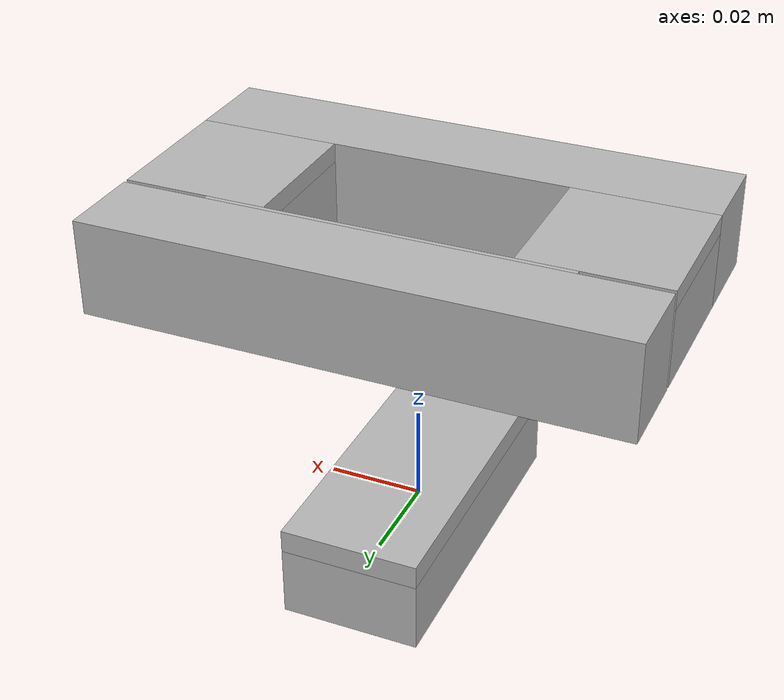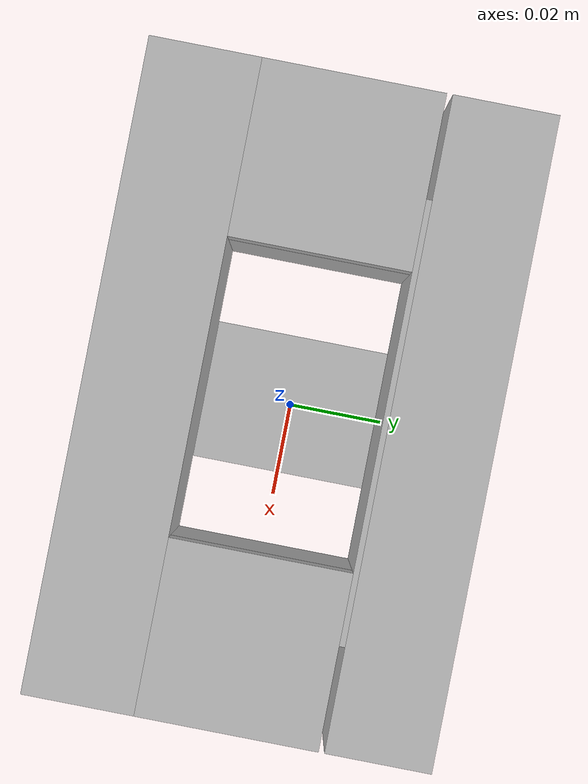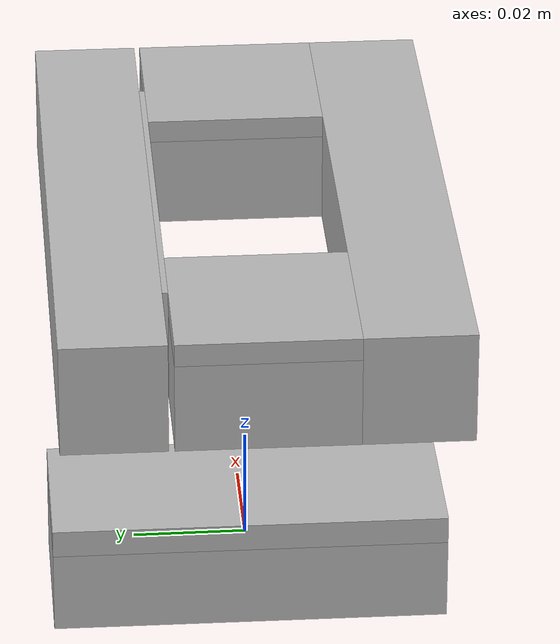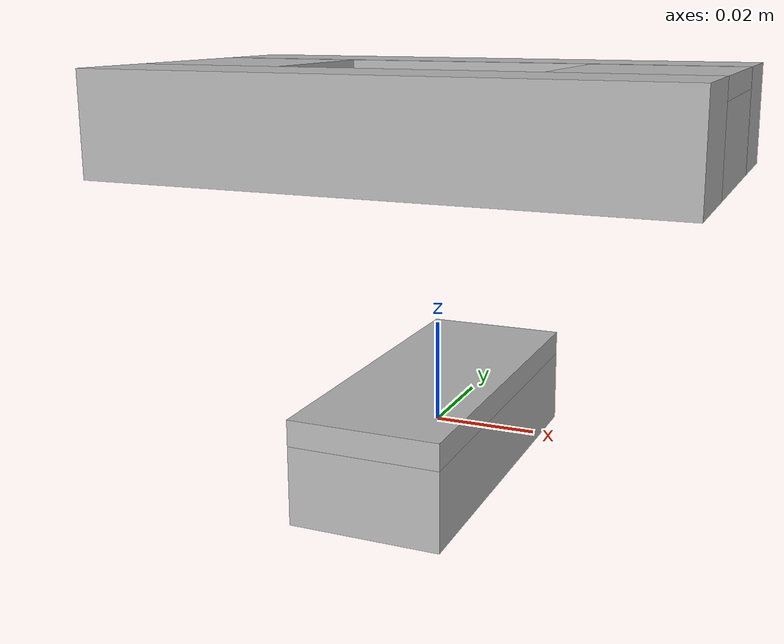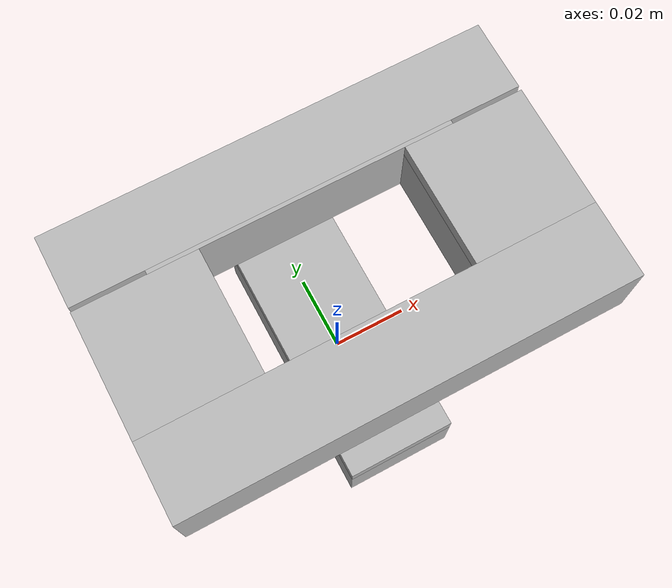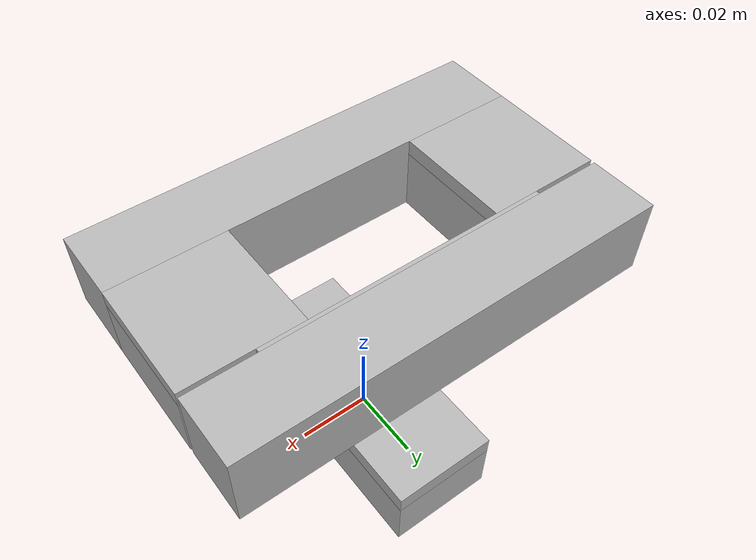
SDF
<?xml version="1.0"?>
<sdf version="1.7">
<world name="w">
<model name="big_fixed_puzzle">
<link name="bin_base">
	<inertial>
		<mass>1.0</mass>
		<inertia>
			<ixx>1.0</ixx><ixy>0.0</ixy><ixz>0</ixz>
			<iyy>1.0</iyy><iyz>0.0</iyz><izz>1.0</izz>
		</inertia>
	</inertial>
	<visual name="b1">
		<pose>0.0 0.0 -0.0025 0.0 0.0 0.0</pose>
		<geometry>
			<box><size>0.028999999999999998 0.07 0.015</size></box>
		</geometry>
	</visual>
	<collision name="b1">
		<pose>0.0 0.0 -0.0025 0.0 0.0 0.0</pose>
		<geometry>
			<box><size>0.028999999999999998 0.07 0.015</size></box>
		</geometry>
        </collision>
        <visual name="b1_top">
		<pose>0.0 0.0 0.0075 0.0 0.0 0.0</pose>
		<geometry>
			<box><size>0.028999999999999998 0.07 0.005</size></box>
		</geometry>
	</visual>
	<collision name="b1_top">
		<pose>0.0 0.0 0.0075 0.0 0.0 0.0</pose>
		<geometry>
			<box><size>0.028999999999999998 0.07 0.005</size></box>
		</geometry>
	</collision>

	<visual name="b2">
		<pose>0.0 0.0255 0.06 0.0 0.0 0.0</pose>
		<geometry>
			<box><size>0.1105 0.018 0.02</size></box>
		</geometry>
	</visual>
	<collision name="b2">
		<pose>0.0 0.0255 0.06 0.0 0.0 0.0</pose>
		<geometry>
			<box><size>0.1105 0.018 0.02</size></box>
		</geometry>
        </collision>
        <visual name="b2_inside">
		<pose>0.0 0.016 0.06 0.0 0.0 0.0</pose>
		<geometry>
			<box><size>0.075 0.001 0.02</size></box>
		</geometry>
	</visual>
	<collision name="b2_inside">
		<pose>0.0 0.016 0.06 0.0 0.0 0.0</pose>
		<geometry>
			<box><size>0.075 0.001 0.02</size></box>
		</geometry>
	</collision>

	<visual name="b3_top">
		<pose>0.04025 0.0 0.068 0.0 0.0 0.0</pose>
		<geometry>
			<box><size>0.03 0.031 0.004</size></box>
		</geometry>
	</visual>
	<collision name="b3_top">
		<pose>0.04025 0.0 0.068 0.0 0.0 0.0</pose>
		<geometry>
			<box><size>0.03 0.031 0.004</size></box>
		</geometry>
        </collision>
        <visual name="b3_bottom">
		<pose>0.04025 0.0 0.058 0.0 0.0 0.0</pose>
		<geometry>
			<box><size>0.03 0.031 0.016</size></box>
		</geometry>
	</visual>
	<collision name="b3_bottom">
		<pose>0.04025 0.0 0.058 0.0 0.0 0.0</pose>
		<geometry>
			<box><size>0.03 0.031 0.016</size></box>
		</geometry>
	</collision>

	<visual name="b4_top">
		<pose>-0.04025 0.0 0.068 0.0 0.0 0.0</pose>
		<geometry>
			<box><size>0.03 0.031 0.004</size></box>
		</geometry>
	</visual>
	<collision name="b4_top">
		<pose>-0.04025 0.0 0.068 0.0 0.0 0.0</pose>
		<geometry>
			<box><size>0.03 0.031 0.004</size></box>
		</geometry>
        </collision>
        <visual name="b4_bottom">
		<pose>-0.04025 0.0 0.058 0.0 0.0 0.0</pose>
		<geometry>
			<box><size>0.03 0.031 0.016</size></box>
		</geometry>
	</visual>
	<collision name="b4_bottom">
		<pose>-0.04025 0.0 0.058 0.0 0.0 0.0</pose>
		<geometry>
			<box><size>0.03 0.031 0.016</size></box>
		</geometry>
	</collision>

	<visual name="b5">
		<pose>0.0 -0.025 0.06 0.0 0.0 0.0</pose>
		<geometry>
			<box><size>0.1105 0.019000000000000003 0.02</size></box>
		</geometry>
	</visual>
	<collision name="b5">
		<pose>0.0 -0.025 0.06 0.0 0.0 0.0</pose>
		<geometry>
			<box><size>0.1105 0.019000000000000003 0.02</size></box>
		</geometry>
	</collision>
</link>
</model>
</world>
</sdf>
